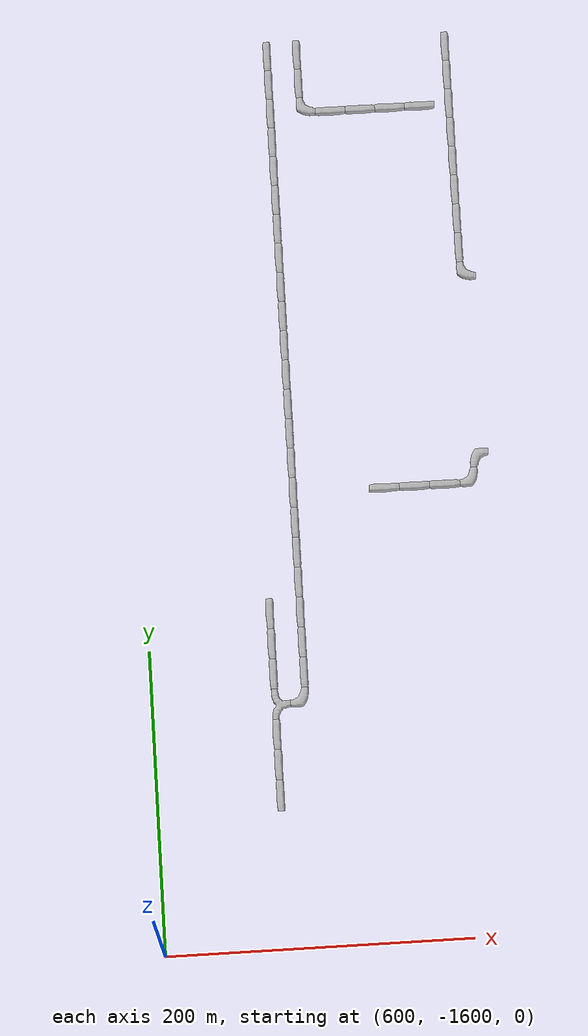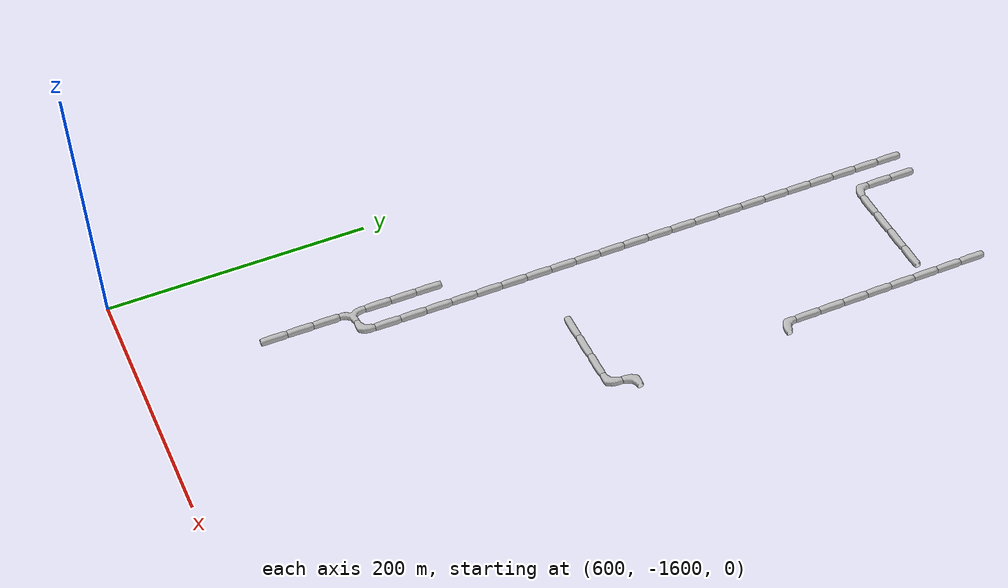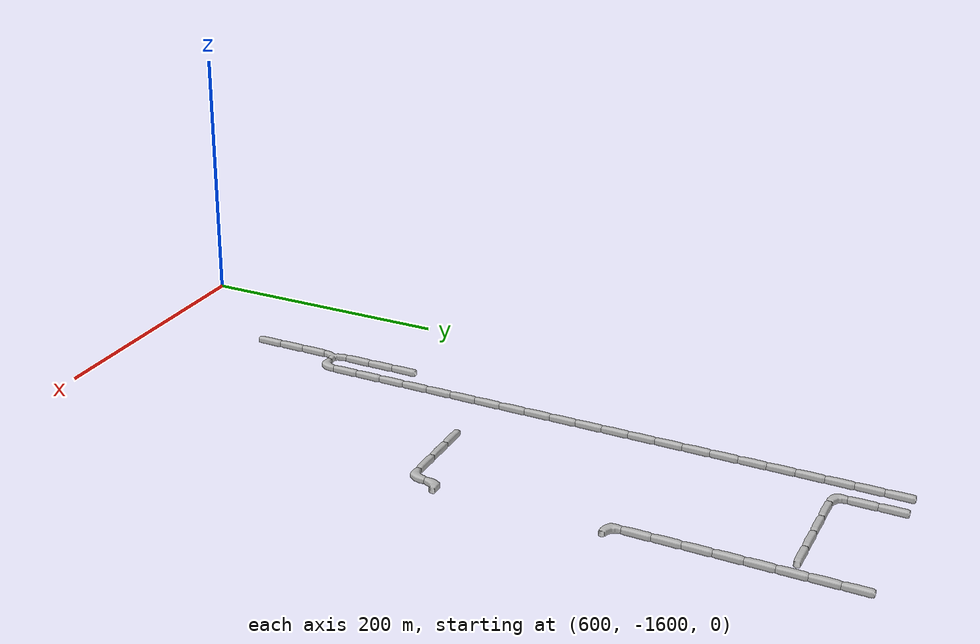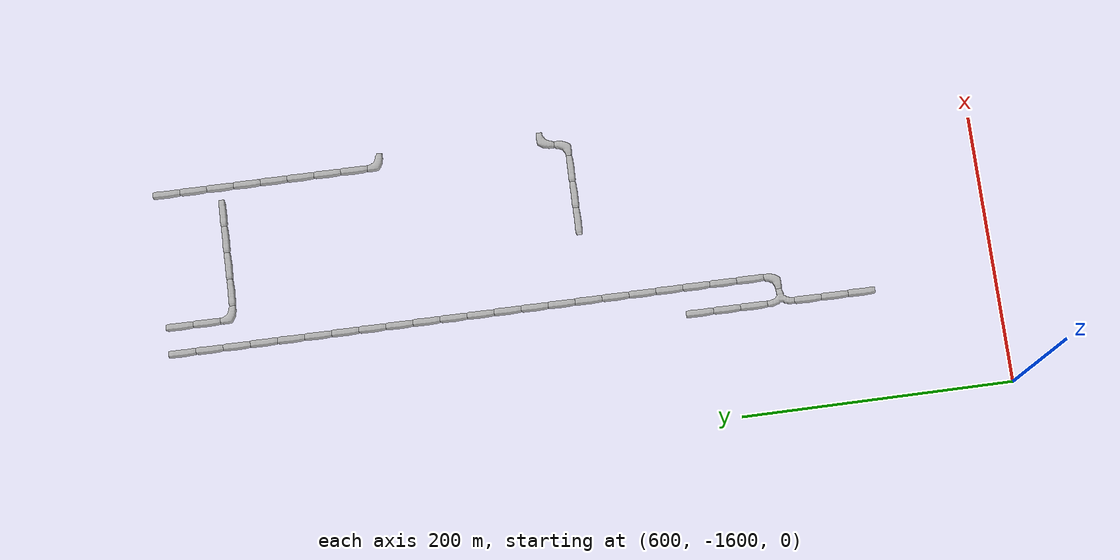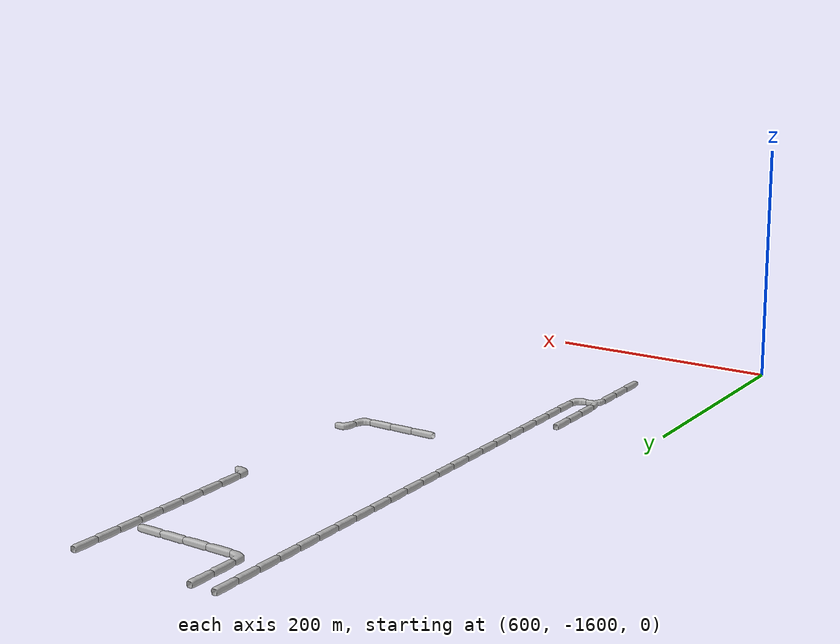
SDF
<sdf version="1.6">
 <world name="cave_16000_8">
  <include>
   <static>true</static>
   <name>cave_41_-50</name>
   <pose>820 -1000 0 0 0 0.0</pose>
   <uri>model://cave_straight_20m</uri>
  </include>
  <include>
   <static>true</static>
   <name>cave_41_-51</name>
   <pose>820 -1020 0 0 0 0.0</pose>
   <uri>model://cave_straight_20m</uri>
  </include>
  <include>
   <static>true</static>
   <name>cave_41_-52</name>
   <pose>820 -1040 0 0 0 0.0</pose>
   <uri>model://cave_straight_20m</uri>
  </include>
  <include>
   <static>true</static>
   <name>cave_41_-53</name>
   <pose>820 -1060 0 0 0 0.0</pose>
   <uri>model://cave_straight_20m</uri>
  </include>
  <include>
   <static>true</static>
   <name>cave_41_-54</name>
   <pose>820 -1080 0 0 0 0.0</pose>
   <uri>model://cave_straight_20m</uri>
  </include>
  <include>
   <static>true</static>
   <name>cave_41_-55</name>
   <pose>820 -1100 0 0 0 0.0</pose>
   <uri>model://cave_straight_20m</uri>
  </include>
  <include>
   <static>true</static>
   <name>cave_41_-56</name>
   <pose>820 -1120 0 0 0 0.0</pose>
   <uri>model://cave_straight_20m</uri>
  </include>
  <include>
   <static>true</static>
   <name>cave_41_-57</name>
   <pose>820 -1140 0 0 0 0.0</pose>
   <uri>model://cave_straight_20m</uri>
  </include>
  <include>
   <static>true</static>
   <name>cave_41_-58</name>
   <pose>820 -1160 0 0 0 0.0</pose>
   <uri>model://cave_L_20m</uri>
  </include>
  <include>
   <static>true</static>
   <name>cave_41_-64</name>
   <pose>820 -1280 0 0 0 -1.5707963267948966</pose>
   <uri>model://cave_L_20m</uri>
  </include>
  <include>
   <static>true</static>
   <name>cave_41_-65</name>
   <pose>820 -1300 0 0 0 1.5707963267948966</pose>
   <uri>model://cave_L_20m</uri>
  </include>
  <include>
   <static>true</static>
   <name>cave_40_-65</name>
   <pose>800 -1300 0 0 0 1.5707963267948966</pose>
   <uri>model://cave_straight_20m</uri>
  </include>
  <include>
   <static>true</static>
   <name>cave_39_-65</name>
   <pose>780 -1300 0 0 0 1.5707963267948966</pose>
   <uri>model://cave_straight_20m</uri>
  </include>
  <include>
   <static>true</static>
   <name>cave_38_-65</name>
   <pose>760 -1300 0 0 0 1.5707963267948966</pose>
   <uri>model://cave_straight_20m</uri>
  </include>
  <include>
   <static>true</static>
   <name>cave_36_-50</name>
   <pose>720 -1000 0 0 0 0.0</pose>
   <uri>model://cave_straight_20m</uri>
  </include>
  <include>
   <static>true</static>
   <name>cave_36_-51</name>
   <pose>720 -1020 0 0 0 0.0</pose>
   <uri>model://cave_straight_20m</uri>
  </include>
  <include>
   <static>true</static>
   <name>cave_36_-52</name>
   <pose>720 -1040 0 0 0 0.0</pose>
   <uri>model://cave_L_20m</uri>
  </include>
  <include>
   <static>true</static>
   <name>cave_37_-52</name>
   <pose>740 -1040 0 0 0 1.5707963267948966</pose>
   <uri>model://cave_straight_20m</uri>
  </include>
  <include>
   <static>true</static>
   <name>cave_38_-52</name>
   <pose>760 -1040 0 0 0 1.5707963267948966</pose>
   <uri>model://cave_straight_20m</uri>
  </include>
  <include>
   <static>true</static>
   <name>cave_39_-52</name>
   <pose>780 -1040 0 0 0 1.5707963267948966</pose>
   <uri>model://cave_straight_20m</uri>
  </include>
  <include>
   <static>true</static>
   <name>cave_40_-52</name>
   <pose>800 -1040 0 0 0 1.5707963267948966</pose>
   <uri>model://cave_straight_20m</uri>
  </include>
  <include>
   <static>true</static>
   <name>cave_35_-50</name>
   <pose>700 -1000 0 0 0 0.0</pose>
   <uri>model://cave_straight_20m</uri>
  </include>
  <include>
   <static>true</static>
   <name>cave_35_-51</name>
   <pose>700 -1020 0 0 0 0.0</pose>
   <uri>model://cave_straight_20m</uri>
  </include>
  <include>
   <static>true</static>
   <name>cave_35_-52</name>
   <pose>700 -1040 0 0 0 0.0</pose>
   <uri>model://cave_straight_20m</uri>
  </include>
  <include>
   <static>true</static>
   <name>cave_35_-53</name>
   <pose>700 -1060 0 0 0 0.0</pose>
   <uri>model://cave_straight_20m</uri>
  </include>
  <include>
   <static>true</static>
   <name>cave_35_-54</name>
   <pose>700 -1080 0 0 0 0.0</pose>
   <uri>model://cave_straight_20m</uri>
  </include>
  <include>
   <static>true</static>
   <name>cave_35_-55</name>
   <pose>700 -1100 0 0 0 0.0</pose>
   <uri>model://cave_straight_20m</uri>
  </include>
  <include>
   <static>true</static>
   <name>cave_35_-56</name>
   <pose>700 -1120 0 0 0 0.0</pose>
   <uri>model://cave_straight_20m</uri>
  </include>
  <include>
   <static>true</static>
   <name>cave_35_-57</name>
   <pose>700 -1140 0 0 0 0.0</pose>
   <uri>model://cave_straight_20m</uri>
  </include>
  <include>
   <static>true</static>
   <name>cave_35_-58</name>
   <pose>700 -1160 0 0 0 0.0</pose>
   <uri>model://cave_straight_20m</uri>
  </include>
  <include>
   <static>true</static>
   <name>cave_35_-59</name>
   <pose>700 -1180 0 0 0 0.0</pose>
   <uri>model://cave_straight_20m</uri>
  </include>
  <include>
   <static>true</static>
   <name>cave_35_-60</name>
   <pose>700 -1200 0 0 0 0.0</pose>
   <uri>model://cave_straight_20m</uri>
  </include>
  <include>
   <static>true</static>
   <name>cave_35_-61</name>
   <pose>700 -1220 0 0 0 0.0</pose>
   <uri>model://cave_straight_20m</uri>
  </include>
  <include>
   <static>true</static>
   <name>cave_35_-62</name>
   <pose>700 -1240 0 0 0 0.0</pose>
   <uri>model://cave_straight_20m</uri>
  </include>
  <include>
   <static>true</static>
   <name>cave_35_-63</name>
   <pose>700 -1260 0 0 0 0.0</pose>
   <uri>model://cave_straight_20m</uri>
  </include>
  <include>
   <static>true</static>
   <name>cave_35_-64</name>
   <pose>700 -1280 0 0 0 0.0</pose>
   <uri>model://cave_straight_20m</uri>
  </include>
  <include>
   <static>true</static>
   <name>cave_35_-65</name>
   <pose>700 -1300 0 0 0 0.0</pose>
   <uri>model://cave_straight_20m</uri>
  </include>
  <include>
   <static>true</static>
   <name>cave_35_-66</name>
   <pose>700 -1320 0 0 0 0.0</pose>
   <uri>model://cave_straight_20m</uri>
  </include>
  <include>
   <static>true</static>
   <name>cave_35_-67</name>
   <pose>700 -1340 0 0 0 0.0</pose>
   <uri>model://cave_straight_20m</uri>
  </include>
  <include>
   <static>true</static>
   <name>cave_35_-68</name>
   <pose>700 -1360 0 0 0 0.0</pose>
   <uri>model://cave_straight_20m</uri>
  </include>
  <include>
   <static>true</static>
   <name>cave_35_-69</name>
   <pose>700 -1380 0 0 0 0.0</pose>
   <uri>model://cave_straight_20m</uri>
  </include>
  <include>
   <static>true</static>
   <name>cave_35_-70</name>
   <pose>700 -1400 0 0 0 0.0</pose>
   <uri>model://cave_straight_20m</uri>
  </include>
  <include>
   <static>true</static>
   <name>cave_35_-71</name>
   <pose>700 -1420 0 0 0 0.0</pose>
   <uri>model://cave_straight_20m</uri>
  </include>
  <include>
   <static>true</static>
   <name>cave_35_-72</name>
   <pose>700 -1440 0 0 0 1.5707963267948966</pose>
   <uri>model://cave_L_20m</uri>
  </include>
  <include>
   <static>true</static>
   <name>cave_34_-72</name>
   <pose>680 -1440 0 0 0 -1.5707963267948966</pose>
   <uri>model://cave_3way_20m</uri>
  </include>
  <include>
   <static>true</static>
   <name>cave_34_-73</name>
   <pose>680 -1460 0 0 0 0.0</pose>
   <uri>model://cave_straight_20m</uri>
  </include>
  <include>
   <static>true</static>
   <name>cave_34_-74</name>
   <pose>680 -1480 0 0 0 0.0</pose>
   <uri>model://cave_straight_20m</uri>
  </include>
  <include>
   <static>true</static>
   <name>cave_34_-75</name>
   <pose>680 -1500 0 0 0 0.0</pose>
   <uri>model://cave_straight_20m</uri>
  </include>
  <include>
   <static>true</static>
   <name>cave_34_-71</name>
   <pose>680 -1420 0 0 0 0.0</pose>
   <uri>model://cave_straight_20m</uri>
  </include>
  <include>
   <static>true</static>
   <name>cave_34_-70</name>
   <pose>680 -1400 0 0 0 0.0</pose>
   <uri>model://cave_straight_20m</uri>
  </include>
  <include>
   <static>true</static>
   <name>cave_34_-69</name>
   <pose>680 -1380 0 0 0 0.0</pose>
   <uri>model://cave_straight_20m</uri>
  </include>
 </world>
</sdf>
